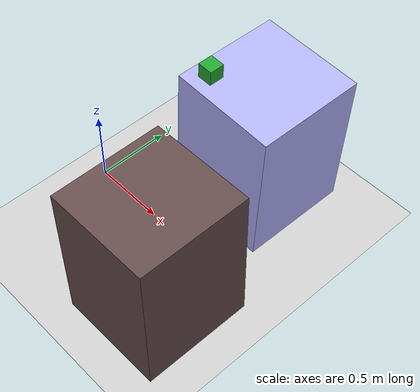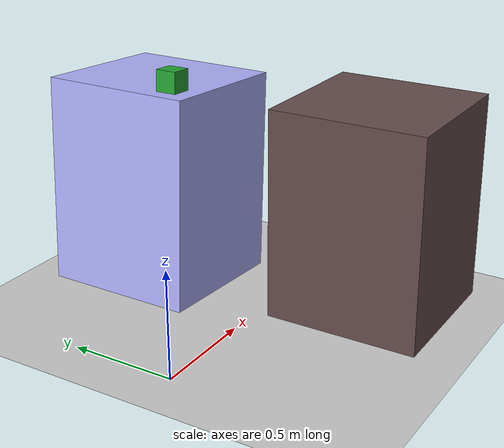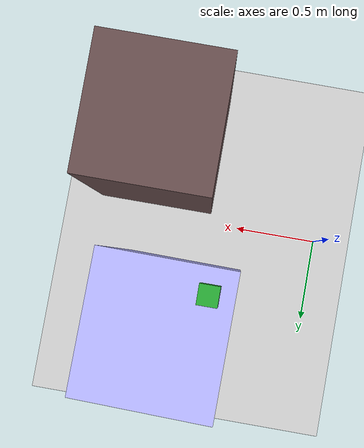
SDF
<sdf version="1.6">
 <world name="default">
  <light name="sun" type="directional">
   <pose>0 0 10 0 -0 0</pose>
   <diffuse>0.8 0.8 0.8 1</diffuse>
   <specular>0.2 0.2 0.2 1</specular>
   <attenuation>
    <range>1000</range>
    <constant>0.9</constant>
    <linear>0.01</linear>
    <quadratic>0.001</quadratic>
   </attenuation>
   <direction>-0.5 0.1 -0.9</direction>
  </light>
  <physics name="dart_2ms" default="0" type="dart">
   <max_step_size>0.002</max_step_size>
   <real_time_factor>1</real_time_factor>
   <real_time_update_rate>500</real_time_update_rate>
   <dart><solver><solver_type>pgs</solver_type></solver></dart>
  </physics>
  <model name="ground_plane">
   <static>1</static>
   <link name="link">
    <collision name="collision">
     <geometry><plane><normal>0 0 1</normal><size>100 100</size></plane></geometry>
     <surface>
      <contact><collide_bitmask>65535</collide_bitmask></contact>
      <friction><ode><mu>100</mu><mu2>50</mu2></ode></friction>
     </surface>
    </collision>
    <visual name="visual">
     <cast_shadows>0</cast_shadows>
     <geometry><plane><normal>0 0 1</normal><size>100 100</size></plane></geometry>
     <material>
      <script><uri>file://media/materials/scripts/gazebo.material</uri><name>Gazebo/Grey</name></script>
     </material>
    </visual>
   </link>
  </model>
  <gravity>0 0 -9.8</gravity>
  <magnetic_field>6e-06 2.3e-05 -4.2e-05</magnetic_field>
  <atmosphere type="adiabatic"/>
  <scene><ambient>0.4 0.4 0.4 1</ambient><background>0.7 0.7 0.7 1</background><shadows>1</shadows></scene>
  <spherical_coordinates>
   <surface_model>EARTH_WGS84</surface_model>
   <latitude_deg>0</latitude_deg>
   <longitude_deg>0</longitude_deg>
   <elevation>0</elevation>
   <heading_deg>0</heading_deg>
  </spherical_coordinates>
  <model name="object1">
   <link name="link">
    <inertial>
     <mass>0.2</mass>
     <inertia><ixx>0.00125</ixx><ixy>0</ixy><ixz>0</ixz><iyy>0.00125</iyy><iyz>0</iyz><izz>0.0005</izz></inertia>
    </inertial>
    <collision name="box"><geometry><box><size>0.1 0.1 0.1</size></box></geometry></collision>
    <visual name="box">
     <geometry><box><size>0.1 0.1 0.1</size></box></geometry>
     <material>
      <script><uri>file://media/materials/scripts/gazebo.material</uri><name>Gazebo/Green</name></script>
     </material>
    </visual>
   </link>
   <pose>0.618005 0.390735 1.07959 0.000684 0.053199 0.005321</pose>
  </model>
  <model name="table1">
   <link name="link">
    <inertial>
     <mass>1</mass>
     <inertia>
      <ixx>0.166667</ixx>
      <ixy>0</ixy>
      <ixz>0</ixz>
      <iyy>0.166667</iyy>
      <iyz>0</iyz>
      <izz>0.166667</izz>
     </inertia>
    </inertial>
    <visual name="visual">
     <geometry><box><size>0.710295 0.73351 1</size></box></geometry>
     <material>
      <script><name>Gazebo/Grey</name><uri>file://media/materials/scripts/gazebo.material</uri></script>
      <shader type="pixel"><normal_map>__default__</normal_map></shader>
      <specular>0.5 0.5 0 0</specular>
      <ambient>0.4 0.3 0.3 1</ambient>
      <diffuse>0.7 0.7 0.7 1</diffuse>
      <emissive>0.5 0.5 0 1</emissive>
     </material>
    </visual>
    <collision name="collision">
     <geometry><box><size>0.710295 0.73351 1</size></box></geometry>
     <surface>
      <friction>
       <ode><mu>1</mu><mu2>1</mu2><fdir1>0 0 0</fdir1><slip1>0</slip1><slip2>0</slip2></ode>
       <torsional>
        <coefficient>1</coefficient>
        <patch_radius>0</patch_radius>
        <surface_radius>0</surface_radius>
        <use_patch_radius>1</use_patch_radius>
        <ode><slip>0</slip></ode>
       </torsional>
      </friction>
      <bounce><restitution_coefficient>0</restitution_coefficient><threshold>1e+06</threshold></bounce>
      <contact>
       <collide_without_contact>0</collide_without_contact>
       <collide_without_contact_bitmask>1</collide_without_contact_bitmask>
       <collide_bitmask>1</collide_bitmask>
       <ode>
        <soft_cfm>0</soft_cfm>
        <soft_erp>0.2</soft_erp>
        <kp>1e+13</kp>
        <kd>1</kd>
        <max_vel>0.01</max_vel>
        <min_depth>0</min_depth>
       </ode>
       <bullet>
        <split_impulse>1</split_impulse>
        <split_impulse_penetration_threshold>-0.01</split_impulse_penetration_threshold>
        <soft_cfm>0</soft_cfm>
        <soft_erp>0.2</soft_erp>
        <kp>1e+13</kp>
        <kd>1</kd>
       </bullet>
      </contact>
     </surface>
    </collision>
   </link>
   <static>1</static>
   <pose>1.03738 -0.431302 0.5 0 -0 0.002492</pose>
  </model>
  <model name="table2">
   <link name="link">
    <inertial>
     <mass>1</mass>
     <inertia>
      <ixx>0.166667</ixx>
      <ixy>0</ixy>
      <ixz>0</ixz>
      <iyy>0.166667</iyy>
      <iyz>0</iyz>
      <izz>0.166667</izz>
     </inertia>
    </inertial>
    <visual name="visual">
     <geometry><box><size>0.710295 0.73351 1</size></box></geometry>
     <material>
      <script><name>Gazebo/Grey</name><uri>file://media/materials/scripts/gazebo.material</uri></script>
      <shader type="pixel"><normal_map>__default__</normal_map></shader>
      <ambient>0 0.5 0.5 0</ambient>
      <diffuse>0.7 0.7 1 1</diffuse>
      <specular>0.01 0.01 1 1</specular>
      <emissive>0 0.5 0.5 1</emissive>
     </material>
    </visual>
    <collision name="collision">
     <geometry><box><size>0.710295 0.73351 1</size></box></geometry>
     <surface>
      <friction>
       <ode><mu>1</mu><mu2>1</mu2><fdir1>0 0 0</fdir1><slip1>0</slip1><slip2>0</slip2></ode>
       <torsional>
        <coefficient>1</coefficient>
        <patch_radius>0</patch_radius>
        <surface_radius>0</surface_radius>
        <use_patch_radius>1</use_patch_radius>
        <ode><slip>0</slip></ode>
       </torsional>
      </friction>
      <bounce><restitution_coefficient>0</restitution_coefficient><threshold>1e+06</threshold></bounce>
      <contact>
       <collide_without_contact>0</collide_without_contact>
       <collide_without_contact_bitmask>1</collide_without_contact_bitmask>
       <collide_bitmask>1</collide_bitmask>
       <ode>
        <soft_cfm>0</soft_cfm>
        <soft_erp>0.2</soft_erp>
        <kp>1e+13</kp>
        <kd>1</kd>
        <max_vel>0.01</max_vel>
        <min_depth>0</min_depth>
       </ode>
       <bullet>
        <split_impulse>1</split_impulse>
        <split_impulse_penetration_threshold>-0.01</split_impulse_penetration_threshold>
        <soft_cfm>0</soft_cfm>
        <soft_erp>0.2</soft_erp>
        <kp>1e+13</kp>
        <kd>1</kd>
       </bullet>
      </contact>
     </surface>
    </collision>
   </link>
   <static>1</static>
   <pose>0.819224 0.62314 0.51818 -1.7e-05 0.053237 -0.007855</pose>
  </model>
 </world>
</sdf>
